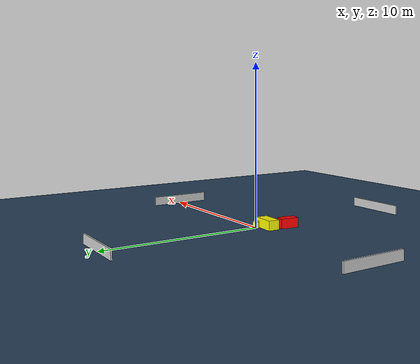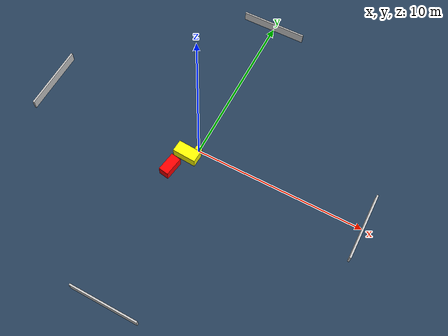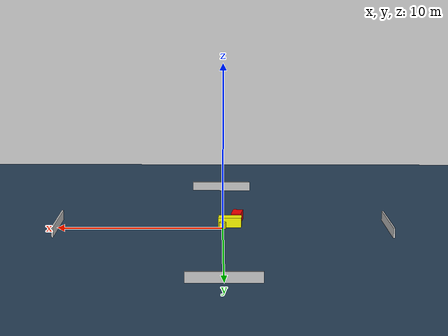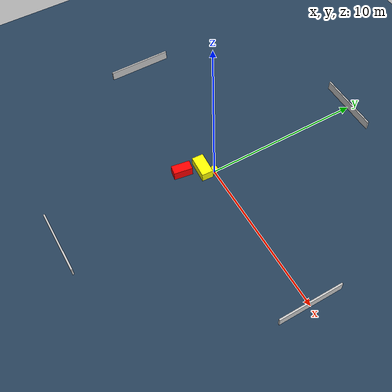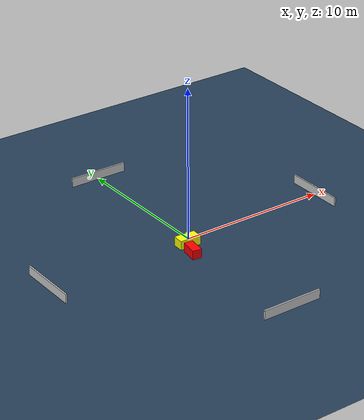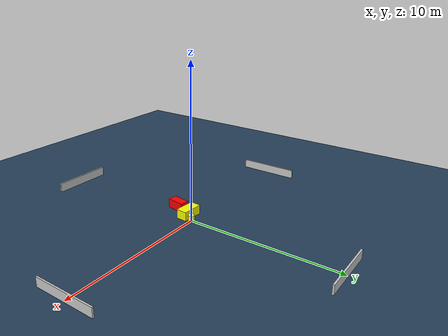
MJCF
<?xml version="1.0" ?>
<mujoco model="generated_environment">
  <option timestep="0.01" integrator="RK4" cone="elliptic"/>
  <default>
    <geom density="1"/>
  </default>
  <asset>
    <texture builtin="gradient" height="3072" name="skybox" rgb1="0.3 0.5 0.7" rgb2="0 0 0" type="skybox" width="512"/>
    <texture builtin="checker" height="300" name="groundplane" rgb1="0.2 0.3 0.4" rgb2="0.1 0.2 0.3" type="2d" width="300"/>
    <material name="groundplane" reflectance="0.2" texrepeat="5 5" texture="groundplane"/>
  </asset>
  <worldbody>
    <light dir="0 0 -1" directional="true" pos="0 0 1.5"/>
    <geom condim="3" friction="0.5 0.005 0.001" material="groundplane" name="floor" pos="0 0 0" size="0 0 0.05" type="plane"/>
    <body name="walls">
      <geom name="wall_1" condim="4" pos="-10.0 0.0 0.3" rgba="0.800000011920929 0.800000011920929 0.800000011920929 1.0" size="0.05 2.0 0.3" type="box"/>
      <geom name="wall_2" condim="4" pos="10.0 0.0 0.3" rgba="0.800000011920929 0.800000011920929 0.800000011920929 1.0" size="0.05 2.0 0.3" type="box"/>
      <geom name="wall_3" condim="4" pos="0.0 -10.0 0.3" rgba="0.800000011920929 0.800000011920929 0.800000011920929 1.0" size="2.0 0.05 0.3" type="box"/>
      <geom name="wall_4" condim="4" pos="0.0 10.0 0.3" rgba="0.800000011920929 0.800000011920929 0.800000011920929 1.0" size="2.0 0.05 0.3" type="box"/>
    </body>
    <body name="robot">
      <joint name="joint_x" type="slide" pos="0 0 0" axis="1 0 0"/>
      <joint name="joint_y" type="slide" pos="0 0 0" axis="0 1 0"/>
      <geom name="robot" type="cylinder" pos="0.0 0.0 0.2" size="0.2 0.2 0.0" mass="5.0" friction="1.0 0.005 0.0001" condim="4" rgba="1.0 1.0 0.0 1.0"/>
    </body>
    <body name="obstacle_1_movable">
      <geom name="obstacle_1_movable" condim="4" pos="-0.4531285020800754 -0.5528410388560645 0.3" euler="0 0 86.71813765489028" friction="0.0 0.005 0.001" rgba="1.0 1.0 0.0 1.0" size="0.35749524578350167 0.7003726311297389 0.3" type="box" mass="0.1"/>
      <joint type="free"/>
    </body>
    <body name="obstacle_2_static">
      <geom name="obstacle_2_static" condim="4" pos="-0.9060185998188114 -1.7141759844482287 0.3" euler="0 0 170.9838516408914" friction="0.0 0.005 0.001" rgba="1.0 0.0 0.0 1.0" size="0.30015520756168523 0.5784556925644451 0.3" type="box"/>
    </body>
  </worldbody>
  <actuator>
    <motor name="actuator_x" joint="joint_x" gear="1" ctrlrange="-1 1"/>
    <motor name="actuator_y" joint="joint_y" gear="1" ctrlrange="-1 1"/>
  </actuator>
</mujoco>
